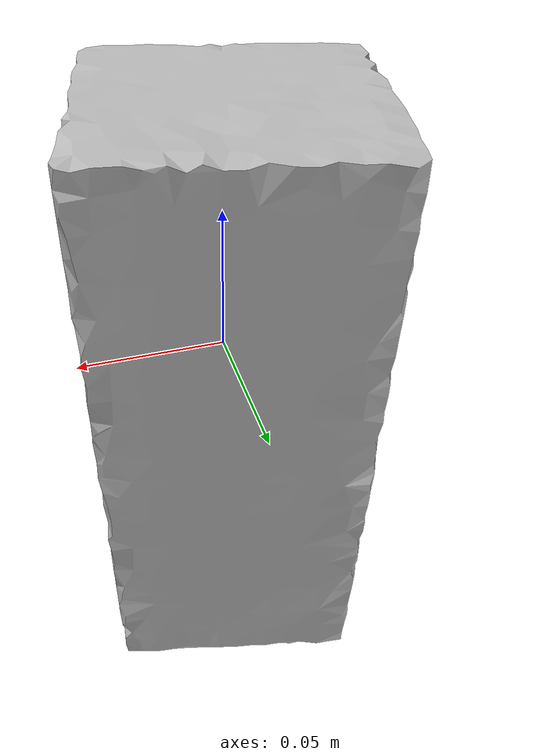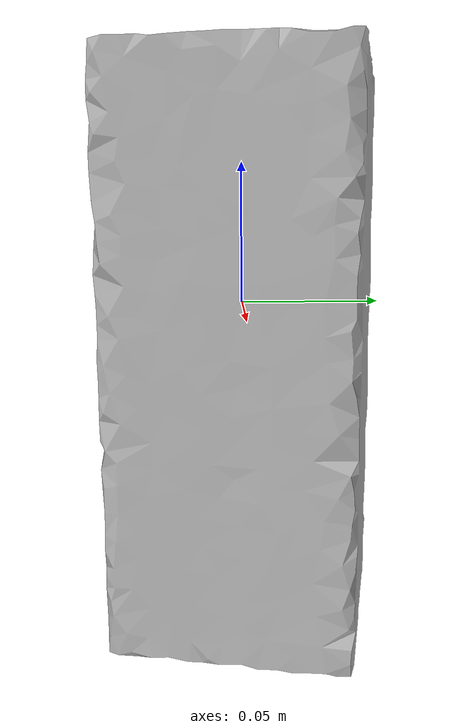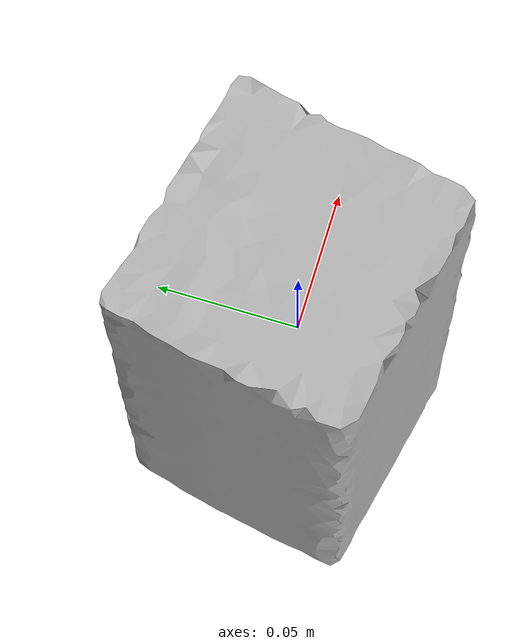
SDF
<?xml version="1.0" ?>
<sdf version="1.7">
    <model name="036_wood_block">
        <link name="036_wood_block_link">
            <inertial>
                <pose>-0.001813 0.002142 -0.017328 0.0 0.0 0.0</pose>
                <mass>1.0</mass>
                <inertia>0.0 0.0 0.0 0.0 0.0 0.0</inertia>
            </inertial>
            <collision name="036_wood_block_collision">
                <surface>
                    <friction>
                        <ode>
                            <mu>1</mu>
                            <mu2>1</mu2>
                        </ode>
                    </friction>
                </surface>
                <max_contact>1</max_contact>
                <geometry>
                    <mesh>
                        <uri>model://036_wood_block/textured.obj</uri>
                    </mesh>
                </geometry>
            </collision>
            <visual name="036_wood_block_visual">
                <geometry>
                    <mesh>
                        <uri>model://036_wood_block/textured.obj</uri>
                    </mesh>
                </geometry>
            </visual>
        </link>

        <joint name="world_to_base_link" type="fixed">
            <parent>world</parent>
            <child>036_wood_block_link</child>
        </joint>
    </model>
</sdf>
